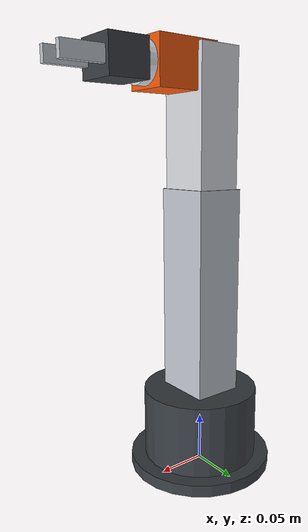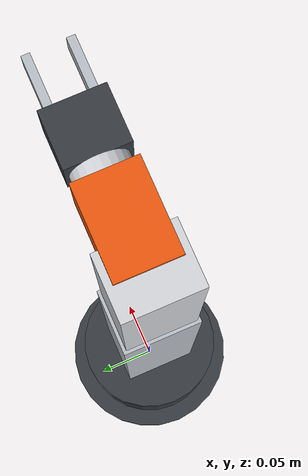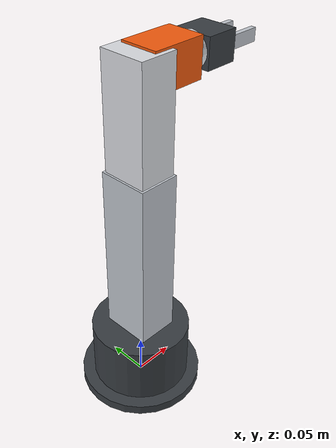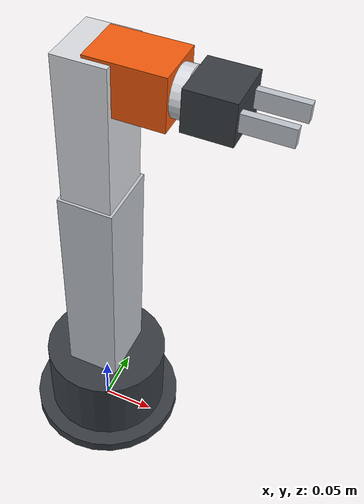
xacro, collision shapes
<?xml version="1.0"?>
<robot name="devotics_arm_v1" xmlns:xacro="http://www.ros.org/wiki/xacro">

  <!-- 1. Include Shared Visual Materials -->
  <xacro:include filename="materials.xacro" />

  <!-- 2. Kinematic Constants (Meters) — From Stage 1 Reverse Engineering -->
  <xacro:property name="BASE_TO_J1_Z" value="0.012" />       <!-- 55.0 mm: Table to Yaw plane -->
  <xacro:property name="BASE_TO_J1_Z" value="0.006" />       <!-- 6.0 mm: Ball bearing rolling plane -->
  <xacro:property name="J1_TO_J2_Z" value="0.080" />         <!-- 80.0 mm: Turret rise to Shoulder -->
  <xacro:property name="J2_TO_J3_LEN" value="0.185" />       <!-- 185.0 mm: Upper arm pivot-to-pivot -->
  <xacro:property name="J3_TO_J4_LEN" value="0.138" />       <!-- 138.0 mm: Forearm pivot-to-pivot -->
  <xacro:property name="J4_TO_J5_OFFSET" value="0.065" />    <!-- 65.0 mm: Pitch hinge to Roll axis -->
  <xacro:property name="J5_TO_GRIPPER_BASE" value="0.010" /> <!-- 10.0 mm: Flange adapter thickness -->
  <xacro:property name="GRIPPER_BASE_TO_TCP" value="0.080" /><!-- 80.0 mm: Flange to fingertip grasp center -->

  <!-- 3. Inertia Helper Macros                   -->
  <xacro:macro name="cylinder_inertia" params="m r h">
    <inertial>
      <mass value="${m}" />
      <inertia ixx="${(m/12.0) * (3*r*r + h*h)}" ixy="0" ixz="0"
               iyy="${(m/12.0) * (3*r*r + h*h)}" iyz="0"
               izz="${(m/2.0) * (r*r)}" />
    </inertial>
  </xacro:macro>

  <xacro:macro name="box_inertia" params="m x y z">
    <inertial>
      <mass value="${m}" />
      <inertia ixx="${(m/12.0) * (y*y + z*z)}" ixy="0" ixz="0"
               iyy="${(m/12.0) * (x*x + z*z)}" iyz="0"
               izz="${(m/12.0) * (x*x + y*y)}" />
    </inertial>
  </xacro:macro>

  <!-- World Link & Base Attachment               -->
  <link name="world" />

  <joint name="world_to_base_joint" type="fixed">
    <parent link="world" />
    <child link="base_link" />
    <origin xyz="0 0 0" rpy="0 0 0" />
  </joint>

  <!-- Base Link (Stationary Baseplate Assembly)  -->
  <link name="base_link">
    <!-- 1. Table Mount Baseplate (Base_02.stl) -->
    <visual>
      <origin xyz="0 0 0" rpy="1.5708 0 0" />
      <geometry>
        <mesh filename="package://devotics_arm_description/meshes/visual/Base_02.stl" scale="0.001 0.001 0.001" />
      </geometry>
      <material name="dark_gray" />
    </visual>

    <!-- 2. Thrust Ball Bearing Cage (Jaula_bolas.stl) seated in the raceway -->
    <visual>
      <origin xyz="0 0 0.003" rpy="1.5708 0 0" />
      <geometry>
        <mesh filename="package://devotics_arm_description/meshes/visual/Jaula_bolas.stl" scale="0.001 0.001 0.001" />
      </geometry>
      <material name="metallic_silver" />
    </visual>

    <!-- 3. Central Servo Horn Retainer Plate (Base_04.stl) in the center hole -->
    <visual>
      <origin xyz="0 0 0.002" rpy="1.5708 0 0" />
      <geometry>
        <mesh filename="package://devotics_arm_description/meshes/visual/Base_04.stl" scale="0.001 0.001 0.001" />
      </geometry>
      <material name="devotics_orange" />
    </visual>

    <collision>
      <origin xyz="0 0 0.006" rpy="0 0 0" />
      <geometry>
        <cylinder radius="0.075" length="0.012" />
      </geometry>
    </collision>
    <xacro:cylinder_inertia m="0.25" r="0.075" h="0.012" />
  </link>

  <!-- Joint 1: Base Yaw (MG996R)                 -->
  <joint name="joint_1" type="revolute">
    <parent link="base_link" />
    <child link="base_rotation_link" />
    <origin xyz="0 0 ${BASE_TO_J1_Z}" rpy="0 0 0" />
    <axis xyz="0 0 1" />
    <limit lower="-2.61799" upper="2.61799" effort="2.5" velocity="3.14" />
    <dynamics damping="0.1" friction="0.1" />
  </joint>
  <!-- Base Rotation Link (Drum + 2 Side Towers)  -->
  <link name="base_rotation_link">
    <!-- Visual 1: Main Rotating Housing Drum (Base_01.stl) -->
    <visual>
      <origin xyz="0 0 0" rpy="1.5708 0 1.5708" />
      <geometry>
        <mesh filename="package://devotics_arm_description/meshes/visual/Base_01.stl" scale="0.001 0.001 0.001" />
      </geometry>
      <material name="dark_gray" />
    </visual>
    <!-- Visual 2: Left Tower seated on the Left Shelf -->
    <visual>
      <origin xyz="0 0.0325 0.035" rpy="1.5708 0 -1.5708" />
      <geometry>
        <mesh filename="package://devotics_arm_description/meshes/visual/Base_03.stl" scale="0.001 0.001 0.001" />
      </geometry>
      <material name="devotics_orange" />
    </visual>
    <!-- Visual 3: Right Tower seated on the Right Shelf -->
    <visual>
      <origin xyz="0 -0.0325 0.035" rpy="1.5708 0 1.5708" />
      <geometry>
        <mesh filename="package://devotics_arm_description/meshes/visual/Base_03.stl" scale="0.001 0.001 0.001" />
      </geometry>
      <material name="devotics_orange" />
    </visual>
    <collision>
      <origin xyz="0 0 0.040" rpy="0 0 0" />
      <geometry>
        <cylinder radius="0.060" length="0.080" />
      </geometry>
    </collision>
    <xacro:cylinder_inertia m="0.45" r="0.060" h="0.080" />
  </link>

  <!-- Joint 2: Shoulder Pitch (MG996R + Springs) -->
  <joint name="joint_2" type="revolute">
    <parent link="base_rotation_link" />
    <child link="upper_arm_link" />
    <origin xyz="0 0 ${J1_TO_J2_Z}" rpy="0 0 0" />
    <axis xyz="0 1 0" />
    <limit lower="-1.5708" upper="1.5708" effort="3.0" velocity="3.14" />
    <dynamics damping="0.15" friction="0.1" />
  </joint>

  <!-- Upper Arm Link (185 mm Pivot-to-Pivot)     -->
  <link name="upper_arm_link">
    <visual>
      <origin xyz="0 0 0" rpy="1.5708 0 1.5708" />
      <geometry>
        <mesh filename="package://devotics_arm_description/meshes/visual/Brazo_01.stl" scale="0.001 0.001 0.001" />
      </geometry>
      <material name="light_gray" />
    </visual>
    <collision>
      <origin xyz="0 0 ${J2_TO_J3_LEN / 2.0}" rpy="0 0 0" />
      <geometry>
        <box size="0.050 0.060 ${J2_TO_J3_LEN + 0.050}" />
      </geometry>
    </collision>
    <xacro:box_inertia m="0.25" x="0.050" y="0.060" z="${J2_TO_J3_LEN + 0.050}" />
  </link>

  <!-- Joint 3: Elbow Pitch (MG996R)              -->
  <joint name="joint_3" type="revolute">
    <parent link="upper_arm_link" />
    <child link="forearm_link" />
    <origin xyz="0 0 ${J2_TO_J3_LEN}" rpy="0 0 0" />
    <axis xyz="0 1 0" />
    <limit lower="-2.0944" upper="2.0944" effort="2.5" velocity="3.14" />
    <dynamics damping="0.1" friction="0.1" />
  </joint>

  <!-- Forearm Link (138 mm Pivot-to-Pivot)       -->
  <link name="forearm_link">
    <!-- Elbow hinge boss -->
    <visual>
      <origin xyz="0 0 0" rpy="1.5708 0 0" />
      <geometry>
        <cylinder radius="0.022" length="0.045" />
      </geometry>
      <material name="metallic_silver" />
    </visual>
    <!-- Main forearm body (138mm span) -->
    <visual>
      <origin xyz="0 0 ${J3_TO_J4_LEN / 2.0}" rpy="0 0 0" />
      <geometry>
        <box size="0.030 0.045 ${J3_TO_J4_LEN}" />
      </geometry>
      <material name="dark_gray" />
    </visual>
    <!-- Wrist hinge boss -->
    <visual>
      <origin xyz="0 0 ${J3_TO_J4_LEN}" rpy="1.5708 0 0" />
      <geometry>
        <cylinder radius="0.020" length="0.045" />
      </geometry>
      <material name="metallic_silver" />
    </visual>
    <collision>
      <origin xyz="0 0 ${J3_TO_J4_LEN / 2.0}" rpy="0 0 0" />
      <geometry>
        <box size="0.045 0.055 ${J3_TO_J4_LEN + 0.040}" />
      </geometry>
    </collision>
    <xacro:box_inertia m="0.20" x="0.045" y="0.055" z="${J3_TO_J4_LEN + 0.040}" />
  </link>

  <!-- Joint 4: Wrist Pitch (MG996R)              -->
  <joint name="joint_4" type="revolute">
    <parent link="forearm_link" />
    <child link="wrist_pitch_link" />
    <origin xyz="0 0 ${J3_TO_J4_LEN}" rpy="0 0 0" />
    <axis xyz="0 1 0" />
    <limit lower="-1.5708" upper="1.5708" effort="2.0" velocity="3.14" />
    <dynamics damping="0.08" friction="0.08" />
  </joint>

  <!-- Wrist Pitch Link (65 mm offset to roll)    -->
  <link name="wrist_pitch_link">
    <!-- Pitch hinge boss -->
    <visual>
      <origin xyz="0 0 0" rpy="1.5708 0 0" />
      <geometry>
        <cylinder radius="0.018" length="0.040" />
      </geometry>
      <material name="devotics_orange" />
    </visual>
    <!-- Housing body projecting forward along X -->
    <visual>
      <origin xyz="${J4_TO_J5_OFFSET / 2.0} 0 0" rpy="0 0 0" />
      <geometry>
        <box size="${J4_TO_J5_OFFSET} 0.042 0.045" />
      </geometry>
      <material name="devotics_orange" />
    </visual>
    <collision>
      <origin xyz="${J4_TO_J5_OFFSET / 2.0} 0 0" rpy="0 0 0" />
      <geometry>
        <box size="${J4_TO_J5_OFFSET} 0.045 0.045" />
      </geometry>
    </collision>
    <xacro:box_inertia m="0.12" x="${J4_TO_J5_OFFSET}" y="0.045" z="0.045" />
  </link>

  <!-- Joint 5: Wrist Roll (MG996R)               -->
  <joint name="joint_5" type="revolute">
    <parent link="wrist_pitch_link" />
    <child link="wrist_roll_link" />
    <origin xyz="${J4_TO_J5_OFFSET} 0 0" rpy="0 0 0" />
    <axis xyz="1 0 0" />
    <limit lower="-3.14159" upper="3.14159" effort="1.5" velocity="3.14" />
    <dynamics damping="0.05" friction="0.05" />
  </joint>

  <!-- Wrist Roll Link (Flange)                   -->
  <link name="wrist_roll_link">
    <visual>
      <origin xyz="${J5_TO_GRIPPER_BASE / 2.0} 0 0" rpy="0 1.5708 0" />
      <geometry>
        <cylinder radius="0.018" length="${J5_TO_GRIPPER_BASE}" />
      </geometry>
      <material name="metallic_silver" />
    </visual>
    <collision>
      <origin xyz="${J5_TO_GRIPPER_BASE / 2.0} 0 0" rpy="0 1.5708 0" />
      <geometry>
        <cylinder radius="0.020" length="${J5_TO_GRIPPER_BASE}" />
      </geometry>
    </collision>
    <xacro:cylinder_inertia m="0.04" r="0.020" h="${J5_TO_GRIPPER_BASE}" />
  </link>

  <!-- Fixed Flange Joint to Gripper Base         -->
  <joint name="joint_gripper_base" type="fixed">
    <parent link="wrist_roll_link" />
    <child link="gripper_base_link" />
    <origin xyz="${J5_TO_GRIPPER_BASE} 0 0" rpy="0 0 0" />
  </joint>

  <!-- Gripper Base Body (MG90S housing)          -->
  <link name="gripper_base_link">
    <visual>
      <origin xyz="0.020 0 0" rpy="0 0 0" />
      <geometry>
        <box size="0.040 0.045 0.035" />
      </geometry>
      <material name="dark_gray" />
    </visual>
    <collision>
      <origin xyz="0.020 0 0" rpy="0 0 0" />
      <geometry>
        <box size="0.040 0.045 0.035" />
      </geometry>
    </collision>
    <xacro:box_inertia m="0.06" x="0.040" y="0.045" z="0.035" />
  </link>

  <!-- Actuated Gripper Jaws (Left + Right Mimic) -->
  <joint name="gripper_left_finger_joint" type="prismatic">
    <parent link="gripper_base_link" />
    <child link="gripper_left_finger_link" />
    <origin xyz="0.040 0.015 0" rpy="0 0 0" />
    <axis xyz="0 1 0" />
    <limit lower="0.0" upper="0.025" effort="1.0" velocity="0.1" />
  </joint>

  <link name="gripper_left_finger_link">
    <visual>
      <origin xyz="0.020 0 0" rpy="0 0 0" />
      <geometry>
        <box size="0.040 0.006 0.015" />
      </geometry>
      <material name="light_gray" />
    </visual>
    <collision>
      <origin xyz="0.020 0 0" rpy="0 0 0" />
      <geometry>
        <box size="0.040 0.006 0.015" />
      </geometry>
    </collision>
    <xacro:box_inertia m="0.01" x="0.040" y="0.006" z="0.015" />
  </link>

  <joint name="gripper_right_finger_joint" type="prismatic">
    <parent link="gripper_base_link" />
    <child link="gripper_right_finger_link" />
    <origin xyz="0.040 -0.015 0" rpy="0 0 0" />
    <axis xyz="0 -1 0" />
    <limit lower="0.0" upper="0.025" effort="1.0" velocity="0.1" />
    <mimic joint="gripper_left_finger_joint" multiplier="1.0" offset="0.0" />
  </joint>

  <link name="gripper_right_finger_link">
    <visual>
      <origin xyz="0.020 0 0" rpy="0 0 0" />
      <geometry>
        <box size="0.040 0.006 0.015" />
      </geometry>
      <material name="light_gray" />
    </visual>
    <collision>
      <origin xyz="0.020 0 0" rpy="0 0 0" />
      <geometry>
        <box size="0.040 0.006 0.015" />
      </geometry>
    </collision>
    <xacro:box_inertia m="0.01" x="0.040" y="0.006" z="0.015" />
  </link>

  <!-- TCP / Tool0 Frame (Grasp Contact Center)   -->
  <joint name="tcp_joint" type="fixed">
    <parent link="gripper_base_link" />
    <child tool="tool" link="tool0" />
    <origin xyz="${GRIPPER_BASE_TO_TCP} 0 0" rpy="0 0 0" />
  </joint>

  <link name="tool0" />

</robot>

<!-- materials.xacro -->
<robot xmlns:xacro="http://www.ros.org/wiki/xacro">

  <!-- Devotics Signature Color Palette -->
  <material name="devotics_orange">
    <color rgba="0.95 0.35 0.05 1.0"/>
  </material>

  <material name="dark_gray">
    <color rgba="0.22 0.24 0.26 1.0"/>
  </material>

  <material name="light_gray">
    <color rgba="0.75 0.77 0.80 1.0"/>
  </material>

  <material name="metallic_silver">
    <color rgba="0.85 0.86 0.88 1.0"/>
  </material>

  <material name="accent_blue">
    <color rgba="0.10 0.50 0.85 1.0"/>
  </material>

  <material name="rubber_black">
    <color rgba="0.10 0.10 0.10 1.0"/>
  </material>

</robot>
